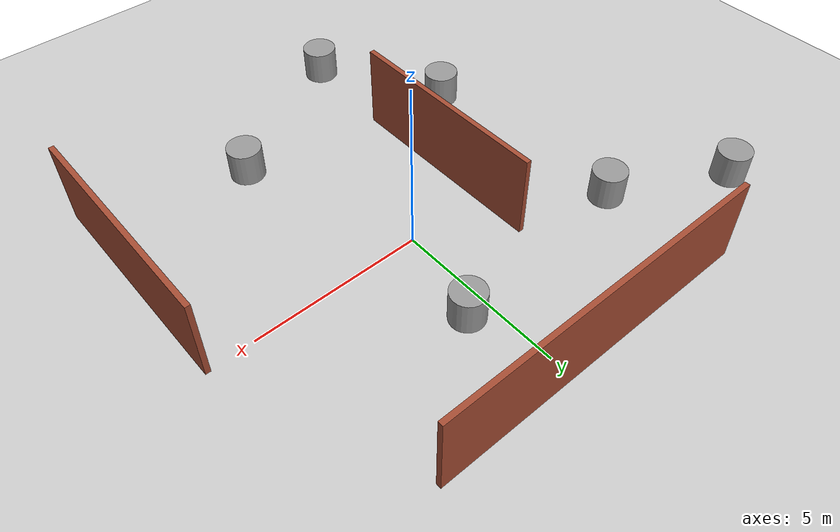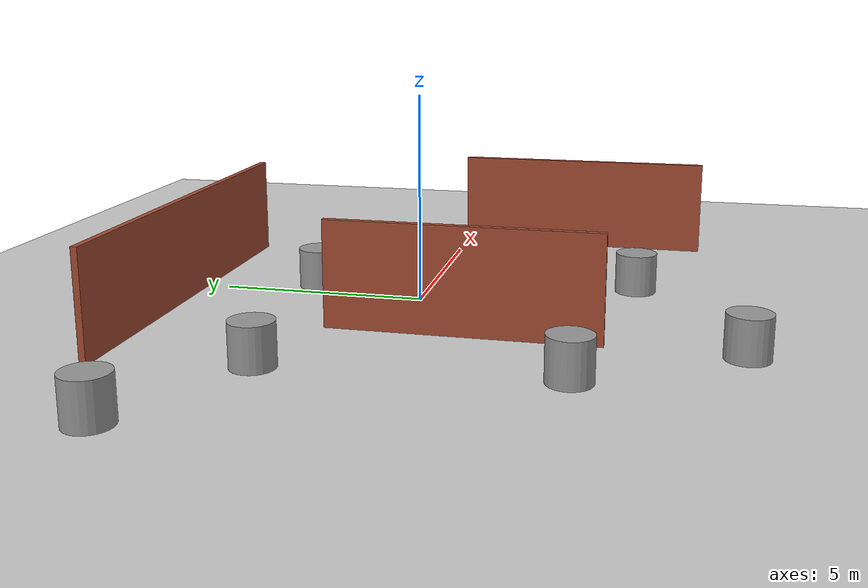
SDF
<sdf version="1.7">
 <world name="default">
  <light name="sun" type="directional">
   <pose>0 0 10 0 -0 0</pose>
   <diffuse>0.8 0.8 0.8 1</diffuse>
   <specular>0.2 0.2 0.2 1</specular>
   <attenuation>
    <range>1000</range>
    <constant>0.9</constant>
    <linear>0.01</linear>
    <quadratic>0.001</quadratic>
   </attenuation>
   <direction>-0.5 0.1 -0.9</direction>
   <spot><inner_angle>0</inner_angle><outer_angle>0</outer_angle><falloff>0</falloff></spot>
  </light>
  <model name="ground_plane">
   <static>1</static>
   <link name="link">
    <collision name="collision">
     <geometry><plane><normal>0 0 1</normal><size>100 100</size></plane></geometry>
     <surface>
      <contact><collide_bitmask>65535</collide_bitmask></contact>
      <friction><ode><mu>100</mu><mu2>50</mu2></ode></friction>
     </surface>
    </collision>
    <visual name="visual">
     <cast_shadows>0</cast_shadows>
     <geometry><plane><normal>0 0 1</normal><size>100 100</size></plane></geometry>
     <material>
      <script><uri>file://media/materials/scripts/gazebo.material</uri><name>Gazebo/Grey</name></script>
     </material>
    </visual>
   </link>
  </model>
  <gravity>0 0 -9.8</gravity>
  <magnetic_field>6e-06 2.3e-05 -4.2e-05</magnetic_field>
  <atmosphere type="adiabatic"/>
  <physics type="ode">
   <max_step_size>0.001</max_step_size>
   <real_time_factor>1</real_time_factor>
   <real_time_update_rate>1000</real_time_update_rate>
  </physics>
  <scene><ambient>0.4 0.4 0.4 1</ambient><background>0.7 0.7 0.7 1</background><shadows>1</shadows></scene>
  <spherical_coordinates>
   <surface_model>EARTH_WGS84</surface_model>
   <latitude_deg>0</latitude_deg>
   <longitude_deg>0</longitude_deg>
   <elevation>0</elevation>
   <heading_deg>0</heading_deg>
  </spherical_coordinates>
  <model name="cafu_world">
   <pose>0.257072 -0.48948 0 0 -0 0</pose>
   <link name="Wall_10">
    <collision name="Wall_10_Collision">
     <geometry><box><size>10 0.15 2.5</size></box></geometry>
     <pose>0 0 1.25 0 -0 0</pose>
    </collision>
    <visual name="Wall_10_Visual">
     <pose>0 0 1.25 0 -0 0</pose>
     <geometry><box><size>10 0.15 2.5</size></box></geometry>
     <material>
      <script><uri>file://media/materials/scripts/gazebo.material</uri><name>Gazebo/Bricks</name></script>
      <ambient>1 1 1 1</ambient>
     </material>
     <meta><layer>0</layer></meta>
    </visual>
    <pose>-1.12172 6.13775 0 0 -0 3.14159</pose>
   </link>
   <link name="Wall_12">
    <collision name="Wall_12_Collision">
     <geometry><box><size>6.25 0.15 2.5</size></box></geometry>
     <pose>0 0 1.25 0 -0 0</pose>
    </collision>
    <visual name="Wall_12_Visual">
     <pose>0 0 1.25 0 -0 0</pose>
     <geometry><box><size>6.25 0.15 2.5</size></box></geometry>
     <material>
      <script><uri>file://media/materials/scripts/gazebo.material</uri><name>Gazebo/Bricks</name></script>
      <ambient>1 1 1 1</ambient>
     </material>
     <meta><layer>0</layer></meta>
    </visual>
    <pose>-2.68051 -0.99389 0 0 -0 -1.5708</pose>
   </link>
   <link name="Wall_14">
    <collision name="Wall_14_Collision">
     <geometry><box><size>6.75 0.15 2.5</size></box></geometry>
     <pose>0 0 1.25 0 -0 0</pose>
    </collision>
    <visual name="Wall_14_Visual">
     <pose>0 0 1.25 0 -0 0</pose>
     <geometry><box><size>6.75 0.15 2.5</size></box></geometry>
     <material>
      <script><uri>file://media/materials/scripts/gazebo.material</uri><name>Gazebo/Bricks</name></script>
      <ambient>1 1 1 1</ambient>
     </material>
     <meta><layer>0</layer></meta>
    </visual>
    <pose>6.04671 -2.83775 0 0 -0 -1.5708</pose>
   </link>
   <static>1</static>
  </model>
  <model name="unit_cylinder">
   <pose>-4.64787 -4.09265 0.499994 -3e-06 -2e-06 0</pose>
   <link name="link">
    <inertial>
     <mass>1</mass>
     <inertia><ixx>0.145833</ixx><ixy>0</ixy><ixz>0</ixz><iyy>0.145833</iyy><iyz>0</iyz><izz>0.125</izz></inertia>
    </inertial>
    <collision name="collision">
     <geometry><cylinder><radius>0.5</radius><length>1</length></cylinder></geometry>
    </collision>
    <visual name="visual">
     <geometry><cylinder><radius>0.5</radius><length>1</length></cylinder></geometry>
     <material>
      <script><name>Gazebo/Grey</name><uri>file://media/materials/scripts/gazebo.material</uri></script>
     </material>
    </visual>
   </link>
  </model>
  <model name="unit_cylinder_0">
   <pose>0.649739 2.80252 0.499996 3e-06 1e-06 -0</pose>
   <link name="link">
    <inertial>
     <mass>1</mass>
     <inertia><ixx>0.145833</ixx><ixy>0</ixy><ixz>0</ixz><iyy>0.145833</iyy><iyz>0</iyz><izz>0.125</izz></inertia>
    </inertial>
    <collision name="collision">
     <geometry><cylinder><radius>0.5</radius><length>1</length></cylinder></geometry>
    </collision>
    <visual name="visual">
     <geometry><cylinder><radius>0.5</radius><length>1</length></cylinder></geometry>
     <material>
      <script><name>Gazebo/Grey</name><uri>file://media/materials/scripts/gazebo.material</uri></script>
     </material>
    </visual>
   </link>
  </model>
  <model name="unit_cylinder_1">
   <pose>-5.15211 2.25333 0.499994 -4e-06 -4e-06 -0</pose>
   <link name="link">
    <inertial>
     <mass>1</mass>
     <inertia><ixx>0.145833</ixx><ixy>0</ixy><ixz>0</ixz><iyy>0.145833</iyy><iyz>0</iyz><izz>0.125</izz></inertia>
    </inertial>
    <collision name="collision">
     <geometry><cylinder><radius>0.5</radius><length>1</length></cylinder></geometry>
    </collision>
    <visual name="visual">
     <geometry><cylinder><radius>0.5</radius><length>1</length></cylinder></geometry>
     <material>
      <script><name>Gazebo/Grey</name><uri>file://media/materials/scripts/gazebo.material</uri></script>
     </material>
    </visual>
   </link>
  </model>
  <model name="unit_cylinder_2">
   <pose>-8.4274 3.99451 0.499997 4e-06 3e-06 -0</pose>
   <link name="link">
    <inertial>
     <mass>1</mass>
     <inertia><ixx>0.145833</ixx><ixy>0</ixy><ixz>0</ixz><iyy>0.145833</iyy><iyz>0</iyz><izz>0.125</izz></inertia>
    </inertial>
    <collision name="collision">
     <geometry><cylinder><radius>0.5</radius><length>1</length></cylinder></geometry>
    </collision>
    <visual name="visual">
     <geometry><cylinder><radius>0.5</radius><length>1</length></cylinder></geometry>
     <material>
      <script><name>Gazebo/Grey</name><uri>file://media/materials/scripts/gazebo.material</uri></script>
     </material>
    </visual>
   </link>
  </model>
  <model name="unit_cylinder_3">
   <pose>-2.55541 -7.56246 0.499998 3e-06 4e-06 -0</pose>
   <link name="link">
    <inertial>
     <mass>1</mass>
     <inertia><ixx>0.145833</ixx><ixy>0</ixy><ixz>0</ixz><iyy>0.145833</iyy><iyz>0</iyz><izz>0.125</izz></inertia>
    </inertial>
    <collision name="collision">
     <geometry><cylinder><radius>0.5</radius><length>1</length></cylinder></geometry>
    </collision>
    <visual name="visual">
     <geometry><cylinder><radius>0.5</radius><length>1</length></cylinder></geometry>
     <material>
      <script><name>Gazebo/Grey</name><uri>file://media/materials/scripts/gazebo.material</uri></script>
     </material>
    </visual>
   </link>
  </model>
  <model name="unit_cylinder_4">
   <pose>1.8658 -5.09491 0.499998 3e-06 4e-06 -0</pose>
   <link name="link">
    <inertial>
     <mass>1</mass>
     <inertia><ixx>0.145833</ixx><ixy>0</ixy><ixz>0</ixz><iyy>0.145833</iyy><iyz>0</iyz><izz>0.125</izz></inertia>
    </inertial>
    <collision name="collision">
     <geometry><cylinder><radius>0.5</radius><length>1</length></cylinder></geometry>
    </collision>
    <visual name="visual">
     <geometry><cylinder><radius>0.5</radius><length>1</length></cylinder></geometry>
     <material>
      <script><name>Gazebo/Grey</name><uri>file://media/materials/scripts/gazebo.material</uri></script>
     </material>
    </visual>
   </link>
  </model>
 </world>
</sdf>
